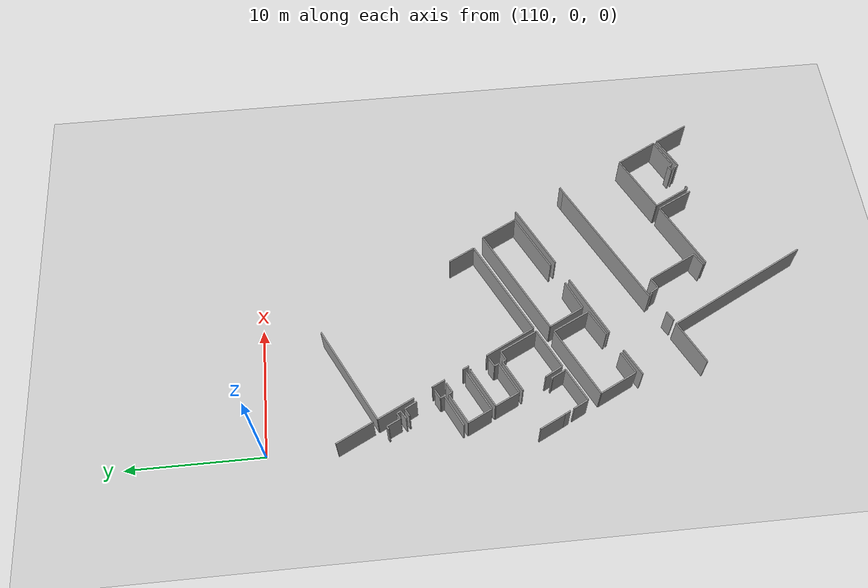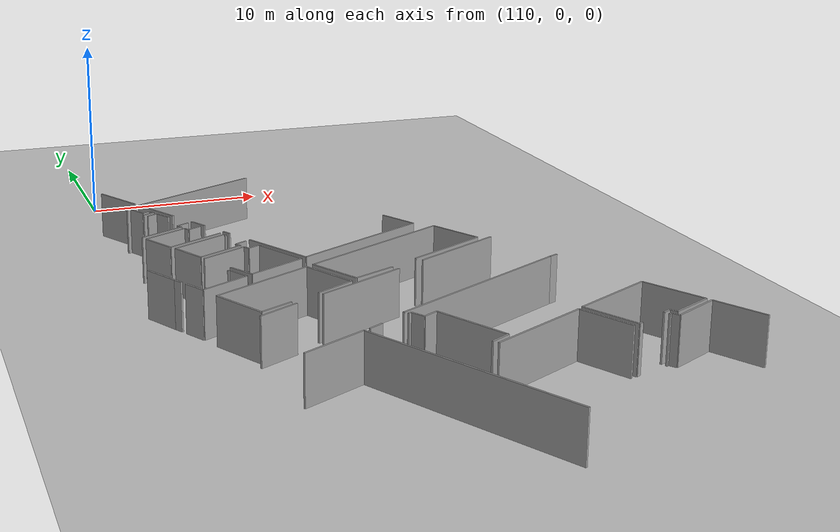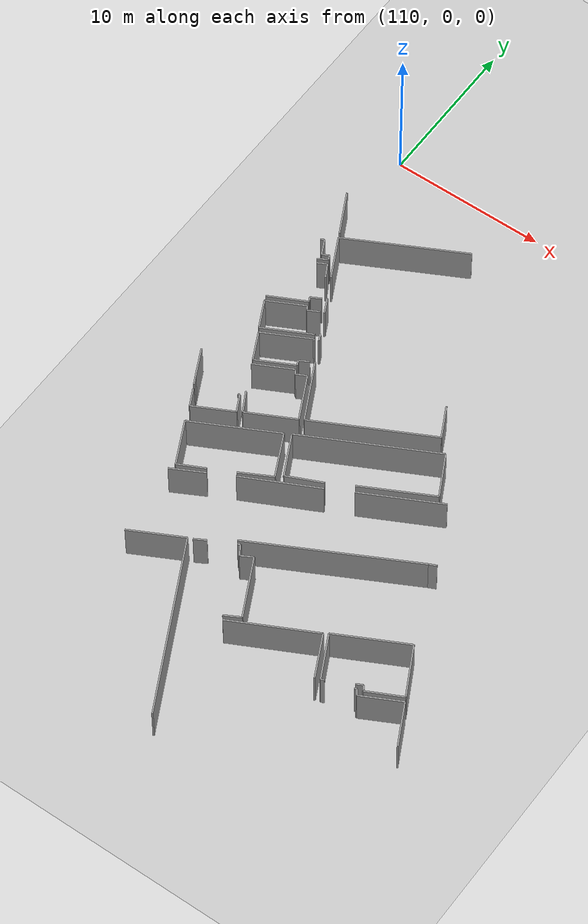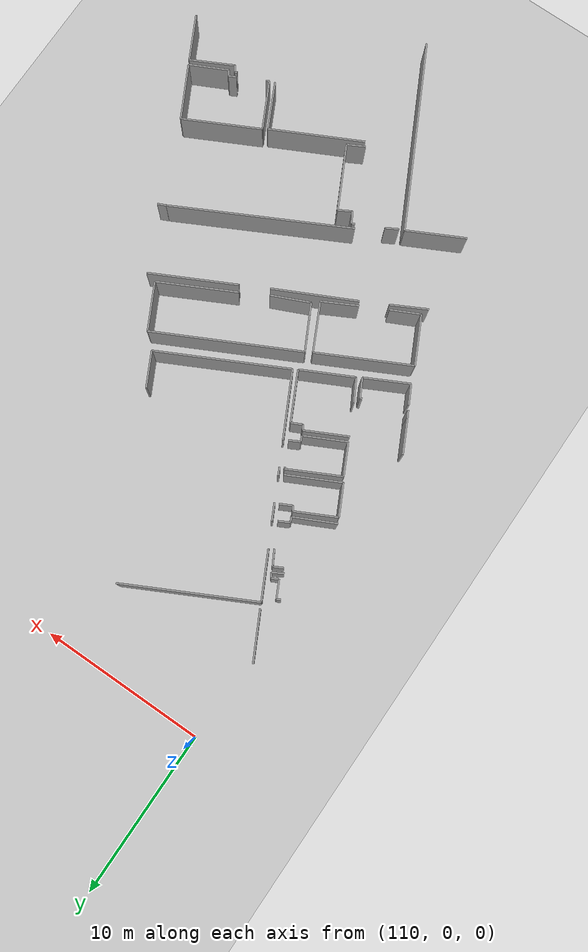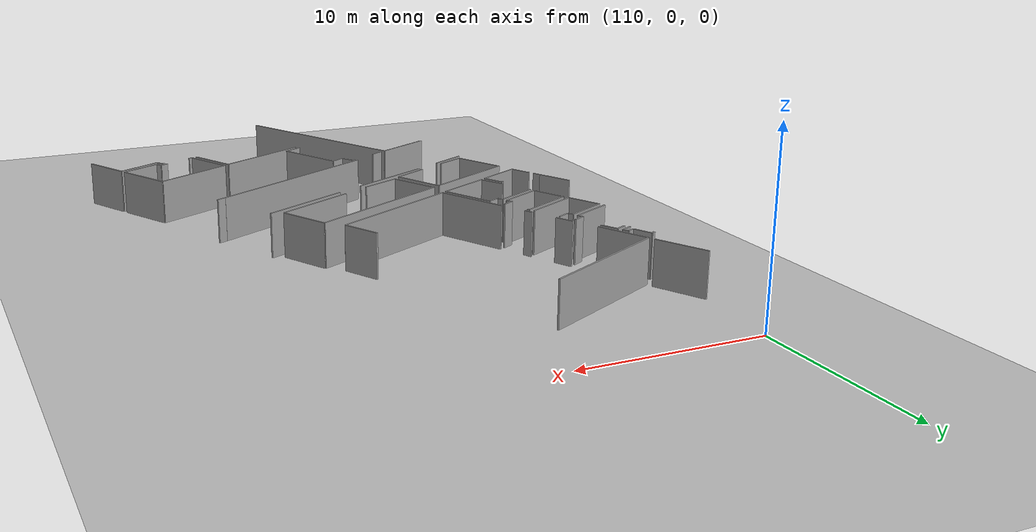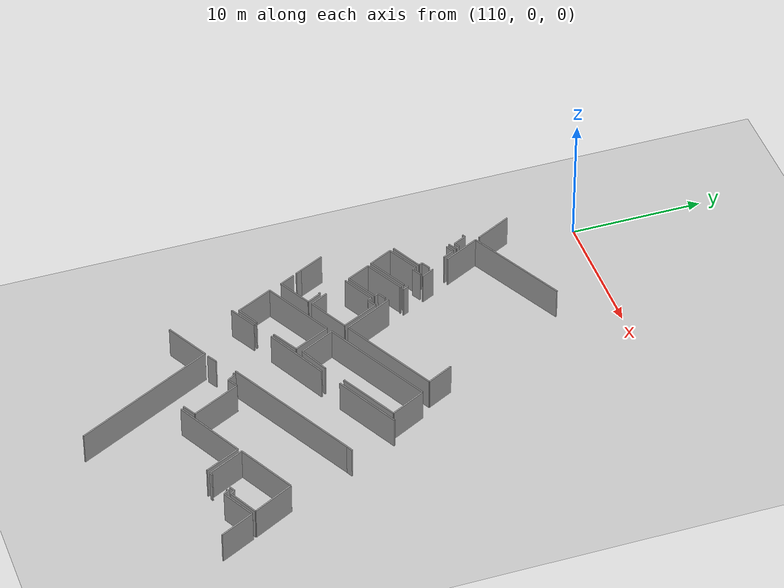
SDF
<sdf version="1.6">
 <world name="default">
  <model name="ground_plane">
   <static>1</static>
   <link name="link">
    <collision name="collision">
     <geometry><plane><normal>0 0 1</normal><size>100 100</size></plane></geometry>
     <surface><friction><ode><mu>100</mu><mu2>50</mu2></ode></friction></surface>
    </collision>
    <visual name="visual">
     <cast_shadows>0</cast_shadows>
     <geometry><plane><normal>0 0 1</normal><size>100 100</size></plane></geometry>
     <material>
      <script><uri>file://media/materials/scripts/gazebo.material</uri><name>Gazebo/Grey</name></script>
     </material>
    </visual>
   </link>
  </model>
  <model name="0510045925_40">
   <static>1</static>
   <link name="Wall_116">
    <collision name="Wall_116_Collision">
     <geometry><box><size>3.62508216395 0.1 2.5</size></box></geometry>
     <pose>1.81254108197 0 1.25 0 0 0</pose>
    </collision>
    <visual name="Wall_116_Visual">
     <pose>1.81254108197 0 1.25 0 0 0</pose>
     <geometry><box><size>3.62508216395 0.1 2.5</size></box></geometry>
     <material>
      <script><uri>file://media/materials/scripts/gazebo.material</uri><name>Gazebo/Grey</name></script>
      <ambient>1 1 1 1</ambient>
     </material>
    </visual>
    <pose>247.142509073 -133.036648816 0 0 0 0.472226789187</pose>
   </link>
   <link name="Wall_117">
    <collision name="Wall_117_Collision">
     <geometry><box><size>11.6427029881 0.1 2.5</size></box></geometry>
     <pose>5.82135149405 0 1.25 0 0 0</pose>
    </collision>
    <visual name="Wall_117_Visual">
     <pose>5.82135149405 0 1.25 0 0 0</pose>
     <geometry><box><size>11.6427029881 0.1 2.5</size></box></geometry>
     <material>
      <script><uri>file://media/materials/scripts/gazebo.material</uri><name>Gazebo/Grey</name></script>
      <ambient>1 1 1 1</ambient>
     </material>
    </visual>
    <pose>250.370853532 -131.387705896 0 0 0 -1.09823813976</pose>
   </link>
   <link name="Wall_126">
    <collision name="Wall_126_Collision">
     <geometry><box><size>5.719314957 0.1 2.5</size></box></geometry>
     <pose>2.8596574785 0 1.25 0 0 0</pose>
    </collision>
    <visual name="Wall_126_Visual">
     <pose>2.8596574785 0 1.25 0 0 0</pose>
     <geometry><box><size>5.719314957 0.1 2.5</size></box></geometry>
     <material>
      <script><uri>file://media/materials/scripts/gazebo.material</uri><name>Gazebo/Grey</name></script>
      <ambient>1 1 1 1</ambient>
     </material>
    </visual>
    <pose>255.246364305 -134.593462095 0 0 0 0.46519556466</pose>
   </link>
   <link name="Wall_127">
    <collision name="Wall_127_Collision">
     <geometry><box><size>2.93678784557 0.1 2.5</size></box></geometry>
     <pose>1.46839392278 0 1.25 0 0 0</pose>
    </collision>
    <visual name="Wall_127_Visual">
     <pose>1.46839392278 0 1.25 0 0 0</pose>
     <geometry><box><size>2.93678784557 0.1 2.5</size></box></geometry>
     <material>
      <script><uri>file://media/materials/scripts/gazebo.material</uri><name>Gazebo/Grey</name></script>
      <ambient>1 1 1 1</ambient>
     </material>
    </visual>
    <pose>260.357909698 -132.027791173 0 0 0 -1.10954494108</pose>
   </link>
   <link name="Wall_132">
    <collision name="Wall_132_Collision">
     <geometry><box><size>0.154443700212 0.1 2.5</size></box></geometry>
     <pose>0.0772218501061 0 1.25 0 0 0</pose>
    </collision>
    <visual name="Wall_132_Visual">
     <pose>0.0772218501061 0 1.25 0 0 0</pose>
     <geometry><box><size>0.154443700212 0.1 2.5</size></box></geometry>
     <material>
      <script><uri>file://media/materials/scripts/gazebo.material</uri><name>Gazebo/Grey</name></script>
      <ambient>1 1 1 1</ambient>
     </material>
    </visual>
    <pose>263.847668841 -133.911245907 0 0 0 0.513642704664</pose>
   </link>
   <link name="Wall_133">
    <collision name="Wall_133_Collision">
     <geometry><box><size>0.429248586005 0.1 2.5</size></box></geometry>
     <pose>0.214624293003 0 1.25 0 0 0</pose>
    </collision>
    <visual name="Wall_133_Visual">
     <pose>0.214624293003 0 1.25 0 0 0</pose>
     <geometry><box><size>0.429248586005 0.1 2.5</size></box></geometry>
     <material>
      <script><uri>file://media/materials/scripts/gazebo.material</uri><name>Gazebo/Grey</name></script>
      <ambient>1 1 1 1</ambient>
     </material>
    </visual>
    <pose>263.982183193 -133.835359509 0 0 0 -0.981481818457</pose>
   </link>
   <link name="Wall_134">
    <collision name="Wall_134_Collision">
     <geometry><box><size>2.71397418761 0.1 2.5</size></box></geometry>
     <pose>1.3569870938 0 1.25 0 0 0</pose>
    </collision>
    <visual name="Wall_134_Visual">
     <pose>1.3569870938 0 1.25 0 0 0</pose>
     <geometry><box><size>2.71397418761 0.1 2.5</size></box></geometry>
     <material>
      <script><uri>file://media/materials/scripts/gazebo.material</uri><name>Gazebo/Grey</name></script>
      <ambient>1 1 1 1</ambient>
     </material>
    </visual>
    <pose>264.220755818 -134.192203244 0 0 0 0.47284852041</pose>
   </link>
   <link name="Wall_135">
    <collision name="Wall_135_Collision">
     <geometry><box><size>2.8467577352 0.1 2.5</size></box></geometry>
     <pose>1.4233788676 0 1.25 0 0 0</pose>
    </collision>
    <visual name="Wall_135_Visual">
     <pose>1.4233788676 0 1.25 0 0 0</pose>
     <geometry><box><size>2.8467577352 0.1 2.5</size></box></geometry>
     <material>
      <script><uri>file://media/materials/scripts/gazebo.material</uri><name>Gazebo/Grey</name></script>
      <ambient>1 1 1 1</ambient>
     </material>
    </visual>
    <pose>266.636938149 -132.956194005 0 0 0 -1.09877570773</pose>
   </link>
   <link name="Wall_137">
    <collision name="Wall_137_Collision">
     <geometry><box><size>4.82132711584 0.1 2.5</size></box></geometry>
     <pose>2.41066355792 0 1.25 0 0 0</pose>
    </collision>
    <visual name="Wall_137_Visual">
     <pose>2.41066355792 0 1.25 0 0 0</pose>
     <geometry><box><size>4.82132711584 0.1 2.5</size></box></geometry>
     <material>
      <script><uri>file://media/materials/scripts/gazebo.material</uri><name>Gazebo/Grey</name></script>
      <ambient>1 1 1 1</ambient>
     </material>
    </visual>
    <pose>260.624400396 -131.836679272 0 0 0 0.468450171131</pose>
   </link>
   <link name="Wall_138">
    <collision name="Wall_138_Collision">
     <geometry><box><size>3.41353898138 0.1 2.5</size></box></geometry>
     <pose>1.70676949069 0 1.25 0 0 0</pose>
    </collision>
    <visual name="Wall_138_Visual">
     <pose>1.70676949069 0 1.25 0 0 0</pose>
     <geometry><box><size>3.41353898138 0.1 2.5</size></box></geometry>
     <material>
      <script><uri>file://media/materials/scripts/gazebo.material</uri><name>Gazebo/Grey</name></script>
      <ambient>1 1 1 1</ambient>
     </material>
    </visual>
    <pose>264.926321667 -129.659830969 0 0 0 -1.0900236877</pose>
   </link>
   <link name="Wall_139">
    <collision name="Wall_139_Collision">
     <geometry><box><size>2.39699355758 0.1 2.5</size></box></geometry>
     <pose>1.19849677879 0 1.25 0 0 0</pose>
    </collision>
    <visual name="Wall_139_Visual">
     <pose>1.19849677879 0 1.25 0 0 0</pose>
     <geometry><box><size>2.39699355758 0.1 2.5</size></box></geometry>
     <material>
      <script><uri>file://media/materials/scripts/gazebo.material</uri><name>Gazebo/Grey</name></script>
      <ambient>1 1 1 1</ambient>
     </material>
    </visual>
    <pose>266.504961803 -132.686403898 0 0 0 -2.68334323062</pose>
   </link>
   <link name="Wall_140">
    <collision name="Wall_140_Collision">
     <geometry><box><size>0.376455434801 0.1 2.5</size></box></geometry>
     <pose>0.188227717401 0 1.25 0 0 0</pose>
    </collision>
    <visual name="Wall_140_Visual">
     <pose>0.188227717401 0 1.25 0 0 0</pose>
     <geometry><box><size>0.376455434801 0.1 2.5</size></box></geometry>
     <material>
      <script><uri>file://media/materials/scripts/gazebo.material</uri><name>Gazebo/Grey</name></script>
      <ambient>1 1 1 1</ambient>
     </material>
    </visual>
    <pose>264.355270171 -133.746783077 0 0 0 2.15655510464</pose>
   </link>
   <link name="Wall_141">
    <collision name="Wall_141_Collision">
     <geometry><box><size>0.469347703283 0.1 2.5</size></box></geometry>
     <pose>0.234673851641 0 1.25 0 0 0</pose>
    </collision>
    <visual name="Wall_141_Visual">
     <pose>0.234673851641 0 1.25 0 0 0</pose>
     <geometry><box><size>0.469347703283 0.1 2.5</size></box></geometry>
     <material>
      <script><uri>file://media/materials/scripts/gazebo.material</uri><name>Gazebo/Grey</name></script>
      <ambient>1 1 1 1</ambient>
     </material>
    </visual>
    <pose>264.147153626 -133.433085455 0 0 0 -2.68520005635</pose>
   </link>
   <link name="Wall_142">
    <collision name="Wall_142_Collision">
     <geometry><box><size>0.223704806979 0.1 2.5</size></box></geometry>
     <pose>0.111852403489 0 1.25 0 0 0</pose>
    </collision>
    <visual name="Wall_142_Visual">
     <pose>0.111852403489 0 1.25 0 0 0</pose>
     <geometry><box><size>0.223704806979 0.1 2.5</size></box></geometry>
     <material>
      <script><uri>file://media/materials/scripts/gazebo.material</uri><name>Gazebo/Grey</name></script>
      <ambient>1 1 1 1</ambient>
     </material>
    </visual>
    <pose>262.185274485 -134.433821477 0 0 0 -2.70839248516</pose>
   </link>
   <link name="Wall_143">
    <collision name="Wall_143_Collision">
     <geometry><box><size>3.01420864127 0.1 2.5</size></box></geometry>
     <pose>1.50710432064 0 1.25 0 0 0</pose>
    </collision>
    <visual name="Wall_143_Visual">
     <pose>1.50710432064 0 1.25 0 0 0</pose>
     <geometry><box><size>3.01420864127 0.1 2.5</size></box></geometry>
     <material>
      <script><uri>file://media/materials/scripts/gazebo.material</uri><name>Gazebo/Grey</name></script>
      <ambient>1 1 1 1</ambient>
     </material>
    </visual>
    <pose>261.982233953 -134.527727723 0 0 0 2.03809657808</pose>
   </link>
   <link name="Wall_145">
    <collision name="Wall_145_Collision">
     <geometry><box><size>0.825821656549 0.1 2.5</size></box></geometry>
     <pose>0.412910828274 0 1.25 0 0 0</pose>
    </collision>
    <visual name="Wall_145_Visual">
     <pose>0.412910828274 0 1.25 0 0 0</pose>
     <geometry><box><size>0.825821656549 0.1 2.5</size></box></geometry>
     <material>
      <script><uri>file://media/materials/scripts/gazebo.material</uri><name>Gazebo/Grey</name></script>
      <ambient>1 1 1 1</ambient>
     </material>
    </visual>
    <pose>250.672876323 -131.267404381 0 0 0 0.509844766145</pose>
   </link>
   <link name="Wall_146">
    <collision name="Wall_146_Collision">
     <geometry><box><size>0.187243837946 0.1 2.5</size></box></geometry>
     <pose>0.0936219189729 0 1.25 0 0 0</pose>
    </collision>
    <visual name="Wall_146_Visual">
     <pose>0.0936219189729 0 1.25 0 0 0</pose>
     <geometry><box><size>0.187243837946 0.1 2.5</size></box></geometry>
     <material>
      <script><uri>file://media/materials/scripts/gazebo.material</uri><name>Gazebo/Grey</name></script>
      <ambient>1 1 1 1</ambient>
     </material>
    </visual>
    <pose>252.939316261 -130.07631786 0 0 0 0.520659226743</pose>
   </link>
   <link name="Wall_147">
    <collision name="Wall_147_Collision">
     <geometry><box><size>0.756490508271 0.1 2.5</size></box></geometry>
     <pose>0.378245254136 0 1.25 0 0 0</pose>
    </collision>
    <visual name="Wall_147_Visual">
     <pose>0.378245254136 0 1.25 0 0 0</pose>
     <geometry><box><size>0.756490508271 0.1 2.5</size></box></geometry>
     <material>
      <script><uri>file://media/materials/scripts/gazebo.material</uri><name>Gazebo/Grey</name></script>
      <ambient>1 1 1 1</ambient>
     </material>
    </visual>
    <pose>253.101748687 -129.983173016 0 0 0 -1.03175772323</pose>
   </link>
   <link name="Wall_148">
    <collision name="Wall_148_Collision">
     <geometry><box><size>0.846406039675 0.1 2.5</size></box></geometry>
     <pose>0.423203019838 0 1.25 0 0 0</pose>
    </collision>
    <visual name="Wall_148_Visual">
     <pose>0.423203019838 0 1.25 0 0 0</pose>
     <geometry><box><size>0.846406039675 0.1 2.5</size></box></geometry>
     <material>
      <script><uri>file://media/materials/scripts/gazebo.material</uri><name>Gazebo/Grey</name></script>
      <ambient>1 1 1 1</ambient>
     </material>
    </visual>
    <pose>253.490063704 -130.632395117 0 0 0 0.5041569081</pose>
   </link>
   <link name="Wall_149">
    <collision name="Wall_149_Collision">
     <geometry><box><size>4.03141661853 0.1 2.5</size></box></geometry>
     <pose>2.01570830927 0 1.25 0 0 0</pose>
    </collision>
    <visual name="Wall_149_Visual">
     <pose>2.01570830927 0 1.25 0 0 0</pose>
     <geometry><box><size>4.03141661853 0.1 2.5</size></box></geometry>
     <material>
      <script><uri>file://media/materials/scripts/gazebo.material</uri><name>Gazebo/Grey</name></script>
      <ambient>1 1 1 1</ambient>
     </material>
    </visual>
    <pose>254.231161646 -130.223522246 0 0 0 -1.1045866422</pose>
   </link>
   <link name="Wall_150">
    <collision name="Wall_150_Collision">
     <geometry><box><size>1.12831326719 0.1 2.5</size></box></geometry>
     <pose>0.564156633594 0 1.25 0 0 0</pose>
    </collision>
    <visual name="Wall_150_Visual">
     <pose>0.564156633594 0 1.25 0 0 0</pose>
     <geometry><box><size>1.12831326719 0.1 2.5</size></box></geometry>
     <material>
      <script><uri>file://media/materials/scripts/gazebo.material</uri><name>Gazebo/Grey</name></script>
      <ambient>1 1 1 1</ambient>
     </material>
    </visual>
    <pose>256.043298393 -133.824699881 0 0 0 -2.64091748231</pose>
   </link>
   <link name="Wall_152">
    <collision name="Wall_152_Collision">
     <geometry><box><size>3.0282633978 0.1 2.5</size></box></geometry>
     <pose>1.5141316989 0 1.25 0 0 0</pose>
    </collision>
    <visual name="Wall_152_Visual">
     <pose>1.5141316989 0 1.25 0 0 0</pose>
     <geometry><box><size>3.0282633978 0.1 2.5</size></box></geometry>
     <material>
      <script><uri>file://media/materials/scripts/gazebo.material</uri><name>Gazebo/Grey</name></script>
      <ambient>1 1 1 1</ambient>
     </material>
    </visual>
    <pose>246.830334255 -127.76698561 0 0 0 2.03388171696</pose>
   </link>
   <link name="Wall_153">
    <collision name="Wall_153_Collision">
     <geometry><box><size>5.80992351053 0.1 2.5</size></box></geometry>
     <pose>2.90496175526 0 1.25 0 0 0</pose>
    </collision>
    <visual name="Wall_153_Visual">
     <pose>2.90496175526 0 1.25 0 0 0</pose>
     <geometry><box><size>5.80992351053 0.1 2.5</size></box></geometry>
     <material>
      <script><uri>file://media/materials/scripts/gazebo.material</uri><name>Gazebo/Grey</name></script>
      <ambient>1 1 1 1</ambient>
     </material>
    </visual>
    <pose>245.477576711 -125.057663511 0 0 0 0.470915093289</pose>
   </link>
   <link name="Wall_154">
    <collision name="Wall_154_Collision">
     <geometry><box><size>3.02923167791 0.1 2.5</size></box></geometry>
     <pose>1.51461583895 0 1.25 0 0 0</pose>
    </collision>
    <visual name="Wall_154_Visual">
     <pose>1.51461583895 0 1.25 0 0 0</pose>
     <geometry><box><size>3.02923167791 0.1 2.5</size></box></geometry>
     <material>
      <script><uri>file://media/materials/scripts/gazebo.material</uri><name>Gazebo/Grey</name></script>
      <ambient>1 1 1 1</ambient>
     </material>
    </visual>
    <pose>250.655110276 -122.421689805 0 0 0 -1.11348106721</pose>
   </link>
   <link name="Wall_155">
    <collision name="Wall_155_Collision">
     <geometry><box><size>2.22370619838 0.1 2.5</size></box></geometry>
     <pose>1.11185309919 0 1.25 0 0 0</pose>
    </collision>
    <visual name="Wall_155_Visual">
     <pose>1.11185309919 0 1.25 0 0 0</pose>
     <geometry><box><size>2.22370619838 0.1 2.5</size></box></geometry>
     <material>
      <script><uri>file://media/materials/scripts/gazebo.material</uri><name>Gazebo/Grey</name></script>
      <ambient>1 1 1 1</ambient>
     </material>
    </visual>
    <pose>251.992639781 -125.139641126 0 0 0 -2.65630141408</pose>
   </link>
   <link name="Wall_156">
    <collision name="Wall_156_Collision">
     <geometry><box><size>1.83438126078 0.1 2.5</size></box></geometry>
     <pose>0.917190630389 0 1.25 0 0 0</pose>
    </collision>
    <visual name="Wall_156_Visual">
     <pose>0.917190630389 0 1.25 0 0 0</pose>
     <geometry><box><size>1.83438126078 0.1 2.5</size></box></geometry>
     <material>
      <script><uri>file://media/materials/scripts/gazebo.material</uri><name>Gazebo/Grey</name></script>
      <ambient>1 1 1 1</ambient>
     </material>
    </visual>
    <pose>248.477500571 -126.959645694 0 0 0 -2.68586518094</pose>
   </link>
   <link name="Wall_157">
    <collision name="Wall_157_Collision">
     <geometry><box><size>2.91217068662 0.1 2.5</size></box></geometry>
     <pose>1.45608534331 0 1.25 0 0 0</pose>
    </collision>
    <visual name="Wall_157_Visual">
     <pose>1.45608534331 0 1.25 0 0 0</pose>
     <geometry><box><size>2.91217068662 0.1 2.5</size></box></geometry>
     <material>
      <script><uri>file://media/materials/scripts/gazebo.material</uri><name>Gazebo/Grey</name></script>
      <ambient>1 1 1 1</ambient>
     </material>
    </visual>
    <pose>252.380954798 -124.782797391 0 0 0 2.04407101598</pose>
   </link>
   <link name="Wall_158">
    <collision name="Wall_158_Collision">
     <geometry><box><size>9.00134218647 0.1 2.5</size></box></geometry>
     <pose>4.50067109323 0 1.25 0 0 0</pose>
    </collision>
    <visual name="Wall_158_Visual">
     <pose>4.50067109323 0 1.25 0 0 0</pose>
     <geometry><box><size>9.00134218647 0.1 2.5</size></box></geometry>
     <material>
      <script><uri>file://media/materials/scripts/gazebo.material</uri><name>Gazebo/Grey</name></script>
      <ambient>1 1 1 1</ambient>
     </material>
    </visual>
    <pose>251.05357732 -122.1907312 0 0 0 0.468161852522</pose>
   </link>
   <link name="Wall_159">
    <collision name="Wall_159_Collision">
     <geometry><box><size>2.94026395505 0.1 2.5</size></box></geometry>
     <pose>1.47013197753 0 1.25 0 0 0</pose>
    </collision>
    <visual name="Wall_159_Visual">
     <pose>1.47013197753 0 1.25 0 0 0</pose>
     <geometry><box><size>2.94026395505 0.1 2.5</size></box></geometry>
     <material>
      <script><uri>file://media/materials/scripts/gazebo.material</uri><name>Gazebo/Grey</name></script>
      <ambient>1 1 1 1</ambient>
     </material>
    </visual>
    <pose>259.086368366 -118.128905358 0 0 0 -1.09271068166</pose>
   </link>
   <link name="Wall_160">
    <collision name="Wall_160_Collision">
     <geometry><box><size>4.84379267904 0.1 2.5</size></box></geometry>
     <pose>2.42189633952 0 1.25 0 0 0</pose>
    </collision>
    <visual name="Wall_160_Visual">
     <pose>2.42189633952 0 1.25 0 0 0</pose>
     <geometry><box><size>4.84379267904 0.1 2.5</size></box></geometry>
     <material>
      <script><uri>file://media/materials/scripts/gazebo.material</uri><name>Gazebo/Grey</name></script>
      <ambient>1 1 1 1</ambient>
     </material>
    </visual>
    <pose>260.439125911 -120.739498997 0 0 0 -2.66979037697</pose>
   </link>
   <link name="Wall_161">
    <collision name="Wall_161_Collision">
     <geometry><box><size>2.39802764192 0.1 2.5</size></box></geometry>
     <pose>1.19901382096 0 1.25 0 0 0</pose>
    </collision>
    <visual name="Wall_161_Visual">
     <pose>1.19901382096 0 1.25 0 0 0</pose>
     <geometry><box><size>2.39802764192 0.1 2.5</size></box></geometry>
     <material>
      <script><uri>file://media/materials/scripts/gazebo.material</uri><name>Gazebo/Grey</name></script>
      <ambient>1 1 1 1</ambient>
     </material>
    </visual>
    <pose>254.56871653 -123.800842618 0 0 0 -2.7197038803</pose>
   </link>
   <link name="Wall_180">
    <collision name="Wall_180_Collision">
     <geometry><box><size>2.27879120139 0.1 2.5</size></box></geometry>
     <pose>1.1393956007 0 1.25 0 0 0</pose>
    </collision>
    <visual name="Wall_180_Visual">
     <pose>1.1393956007 0 1.25 0 0 0</pose>
     <geometry><box><size>2.27879120139 0.1 2.5</size></box></geometry>
     <material>
      <script><uri>file://media/materials/scripts/gazebo.material</uri><name>Gazebo/Grey</name></script>
      <ambient>1 1 1 1</ambient>
     </material>
    </visual>
    <pose>246.634907743 -128.256059491 0 0 0 0.483373043088</pose>
   </link>
   <link name="Wall_181">
    <collision name="Wall_181_Collision">
     <geometry><box><size>5.14508912748 0.1 2.5</size></box></geometry>
     <pose>2.57254456374 0 1.25 0 0 0</pose>
    </collision>
    <visual name="Wall_181_Visual">
     <pose>2.57254456374 0 1.25 0 0 0</pose>
     <geometry><box><size>5.14508912748 0.1 2.5</size></box></geometry>
     <material>
      <script><uri>file://media/materials/scripts/gazebo.material</uri><name>Gazebo/Grey</name></script>
      <ambient>1 1 1 1</ambient>
     </material>
    </visual>
    <pose>250.16019898 -126.409913454 0 0 0 0.457205905873</pose>
   </link>
   <link name="Wall_182">
    <collision name="Wall_182_Collision">
     <geometry><box><size>5.35197619454 0.1 2.5</size></box></geometry>
     <pose>2.67598809727 0 1.25 0 0 0</pose>
    </collision>
    <visual name="Wall_182_Visual">
     <pose>2.67598809727 0 1.25 0 0 0</pose>
     <geometry><box><size>5.35197619454 0.1 2.5</size></box></geometry>
     <material>
      <script><uri>file://media/materials/scripts/gazebo.material</uri><name>Gazebo/Grey</name></script>
      <ambient>1 1 1 1</ambient>
     </material>
    </visual>
    <pose>256.355473211 -123.312276338 0 0 0 0.469034390965</pose>
   </link>
   <link name="Wall_183">
    <collision name="Wall_183_Collision">
     <geometry><box><size>0.515591600117 0.1 2.5</size></box></geometry>
     <pose>0.257795800059 0 1.25 0 0 0</pose>
    </collision>
    <visual name="Wall_183_Visual">
     <pose>0.257795800059 0 1.25 0 0 0</pose>
     <geometry><box><size>0.515591600117 0.1 2.5</size></box></geometry>
     <material>
      <script><uri>file://media/materials/scripts/gazebo.material</uri><name>Gazebo/Grey</name></script>
      <ambient>1 1 1 1</ambient>
     </material>
    </visual>
    <pose>263.017740666 -124.615035151 0 0 0 -2.70392466387</pose>
   </link>
   <link name="Wall_184">
    <collision name="Wall_184_Collision">
     <geometry><box><size>10.9794329733 0.1 2.5</size></box></geometry>
     <pose>5.48971648664 0 1.25 0 0 0</pose>
    </collision>
    <visual name="Wall_184_Visual">
     <pose>5.48971648664 0 1.25 0 0 0</pose>
     <geometry><box><size>10.9794329733 0.1 2.5</size></box></geometry>
     <material>
      <script><uri>file://media/materials/scripts/gazebo.material</uri><name>Gazebo/Grey</name></script>
      <ambient>1 1 1 1</ambient>
     </material>
    </visual>
    <pose>262.550747443 -124.833557524 0 0 0 -2.6655393745</pose>
   </link>
   <link name="Wall_257">
    <collision name="Wall_257_Collision">
     <geometry><box><size>3.00596214658 0.1 2.5</size></box></geometry>
     <pose>1.50298107329 0 1.25 0 0 0</pose>
    </collision>
    <visual name="Wall_257_Visual">
     <pose>1.50298107329 0 1.25 0 0 0</pose>
     <geometry><box><size>3.00596214658 0.1 2.5</size></box></geometry>
     <material>
      <script><uri>file://media/materials/scripts/gazebo.material</uri><name>Gazebo/Grey</name></script>
      <ambient>1 1 1 1</ambient>
     </material>
    </visual>
    <pose>244.936981295 -108.884469937 0 0 0 2.04516779023</pose>
   </link>
   <link name="Wall_273">
    <collision name="Wall_273_Collision">
     <geometry><box><size>0.252183881044 0.1 2.5</size></box></geometry>
     <pose>0.126091940522 0 1.25 0 0 0</pose>
    </collision>
    <visual name="Wall_273_Visual">
     <pose>0.126091940522 0 1.25 0 0 0</pose>
     <geometry><box><size>0.252183881044 0.1 2.5</size></box></geometry>
     <material>
      <script><uri>file://media/materials/scripts/gazebo.material</uri><name>Gazebo/Grey</name></script>
      <ambient>1 1 1 1</ambient>
     </material>
    </visual>
    <pose>244.277099566 -109.935712292 0 0 0 0.504165961479</pose>
   </link>
   <link name="Wall_274">
    <collision name="Wall_274_Collision">
     <geometry><box><size>1.09644237243 0.1 2.5</size></box></geometry>
     <pose>0.548221186214 0 1.25 0 0 0</pose>
    </collision>
    <visual name="Wall_274_Visual">
     <pose>0.548221186214 0 1.25 0 0 0</pose>
     <geometry><box><size>1.09644237243 0.1 2.5</size></box></geometry>
     <material>
      <script><uri>file://media/materials/scripts/gazebo.material</uri><name>Gazebo/Grey</name></script>
      <ambient>1 1 1 1</ambient>
     </material>
    </visual>
    <pose>244.497906145 -109.813887972 0 0 0 -1.10507832738</pose>
   </link>
   <link name="Wall_275">
    <collision name="Wall_275_Collision">
     <geometry><box><size>0.456623228855 0.1 2.5</size></box></geometry>
     <pose>0.228311614427 0 1.25 0 0 0</pose>
    </collision>
    <visual name="Wall_275_Visual">
     <pose>0.228311614427 0 1.25 0 0 0</pose>
     <geometry><box><size>0.456623228855 0.1 2.5</size></box></geometry>
     <material>
      <script><uri>file://media/materials/scripts/gazebo.material</uri><name>Gazebo/Grey</name></script>
      <ambient>1 1 1 1</ambient>
     </material>
    </visual>
    <pose>244.990279435 -110.793558539 0 0 0 0.462653326455</pose>
   </link>
   <link name="Wall_276">
    <collision name="Wall_276_Collision">
     <geometry><box><size>0.307320642742 0.1 2.5</size></box></geometry>
     <pose>0.153660321371 0 1.25 0 0 0</pose>
    </collision>
    <visual name="Wall_276_Visual">
     <pose>0.153660321371 0 1.25 0 0 0</pose>
     <geometry><box><size>0.307320642742 0.1 2.5</size></box></geometry>
     <material>
      <script><uri>file://media/materials/scripts/gazebo.material</uri><name>Gazebo/Grey</name></script>
      <ambient>1 1 1 1</ambient>
     </material>
    </visual>
    <pose>245.398898505 -110.589756605 0 0 0 -1.0428407703</pose>
   </link>
   <link name="Wall_277">
    <collision name="Wall_277_Collision">
     <geometry><box><size>0.714445085122 0.1 2.5</size></box></geometry>
     <pose>0.357222542561 0 1.25 0 0 0</pose>
    </collision>
    <visual name="Wall_277_Visual">
     <pose>0.357222542561 0 1.25 0 0 0</pose>
     <geometry><box><size>0.714445085122 0.1 2.5</size></box></geometry>
     <material>
      <script><uri>file://media/materials/scripts/gazebo.material</uri><name>Gazebo/Grey</name></script>
      <ambient>1 1 1 1</ambient>
     </material>
    </visual>
    <pose>245.553716911 -110.855232101 0 0 0 -2.61244422905</pose>
   </link>
   <link name="Wall_282">
    <collision name="Wall_282_Collision">
     <geometry><box><size>0.638480204442 0.1 2.5</size></box></geometry>
     <pose>0.319240102221 0 1.25 0 0 0</pose>
    </collision>
    <visual name="Wall_282_Visual">
     <pose>0.319240102221 0 1.25 0 0 0</pose>
     <geometry><box><size>0.638480204442 0.1 2.5</size></box></geometry>
     <material>
      <script><uri>file://media/materials/scripts/gazebo.material</uri><name>Gazebo/Grey</name></script>
      <ambient>1 1 1 1</ambient>
     </material>
    </visual>
    <pose>245.11464176 -111.453186467 0 0 0 0.47253626379</pose>
   </link>
   <link name="Wall_283">
    <collision name="Wall_283_Collision">
     <geometry><box><size>0.97404661297 0.1 2.5</size></box></geometry>
     <pose>0.487023306485 0 1.25 0 0 0</pose>
    </collision>
    <visual name="Wall_283_Visual">
     <pose>0.487023306485 0 1.25 0 0 0</pose>
     <geometry><box><size>0.97404661297 0.1 2.5</size></box></geometry>
     <material>
      <script><uri>file://media/materials/scripts/gazebo.material</uri><name>Gazebo/Grey</name></script>
      <ambient>1 1 1 1</ambient>
     </material>
    </visual>
    <pose>245.68315525 -111.162584706 0 0 0 -1.07078415853</pose>
   </link>
   <link name="Wall_284">
    <collision name="Wall_284_Collision">
     <geometry><box><size>0.718109012189 0.1 2.5</size></box></geometry>
     <pose>0.359054506095 0 1.25 0 0 0</pose>
    </collision>
    <visual name="Wall_284_Visual">
     <pose>0.359054506095 0 1.25 0 0 0</pose>
     <geometry><box><size>0.718109012189 0.1 2.5</size></box></geometry>
     <material>
      <script><uri>file://media/materials/scripts/gazebo.material</uri><name>Gazebo/Grey</name></script>
      <ambient>1 1 1 1</ambient>
     </material>
    </visual>
    <pose>246.876018375 -113.391208345 0 0 0 -2.65423407408</pose>
   </link>
   <link name="Wall_285">
    <collision name="Wall_285_Collision">
     <geometry><box><size>0.319626041697 0.1 2.5</size></box></geometry>
     <pose>0.159813020849 0 1.25 0 0 0</pose>
    </collision>
    <visual name="Wall_285_Visual">
     <pose>0.159813020849 0 1.25 0 0 0</pose>
     <geometry><box><size>0.319626041697 0.1 2.5</size></box></geometry>
     <material>
      <script><uri>file://media/materials/scripts/gazebo.material</uri><name>Gazebo/Grey</name></script>
      <ambient>1 1 1 1</ambient>
     </material>
    </visual>
    <pose>246.241516713 -113.727494226 0 0 0 -1.10998961924</pose>
   </link>
   <link name="Wall_286">
    <collision name="Wall_286_Collision">
     <geometry><box><size>2.60742115306 0.1 2.5</size></box></geometry>
     <pose>1.30371057653 0 1.25 0 0 0</pose>
    </collision>
    <visual name="Wall_286_Visual">
     <pose>1.30371057653 0 1.25 0 0 0</pose>
     <geometry><box><size>2.60742115306 0.1 2.5</size></box></geometry>
     <material>
      <script><uri>file://media/materials/scripts/gazebo.material</uri><name>Gazebo/Grey</name></script>
      <ambient>1 1 1 1</ambient>
     </material>
    </visual>
    <pose>246.383645085 -114.013781376 0 0 0 -2.68255932492</pose>
   </link>
   <link name="Wall_287">
    <collision name="Wall_287_Collision">
     <geometry><box><size>1.96587456635 0.1 2.5</size></box></geometry>
     <pose>0.982937283176 0 1.25 0 0 0</pose>
    </collision>
    <visual name="Wall_287_Visual">
     <pose>0.982937283176 0 1.25 0 0 0</pose>
     <geometry><box><size>1.96587456635 0.1 2.5</size></box></geometry>
     <material>
      <script><uri>file://media/materials/scripts/gazebo.material</uri><name>Gazebo/Grey</name></script>
      <ambient>1 1 1 1</ambient>
     </material>
    </visual>
    <pose>245.079109667 -117.235527017 0 0 0 2.03530998639</pose>
   </link>
   <link name="Wall_288">
    <collision name="Wall_288_Collision">
     <geometry><box><size>2.57396932929 0.1 2.5</size></box></geometry>
     <pose>1.28698466464 0 1.25 0 0 0</pose>
    </collision>
    <visual name="Wall_288_Visual">
     <pose>1.28698466464 0 1.25 0 0 0</pose>
     <geometry><box><size>2.57396932929 0.1 2.5</size></box></geometry>
     <material>
      <script><uri>file://media/materials/scripts/gazebo.material</uri><name>Gazebo/Grey</name></script>
      <ambient>1 1 1 1</ambient>
     </material>
    </visual>
    <pose>244.19842136 -115.477957412 0 0 0 0.470438526348</pose>
   </link>
   <link name="Wall_289">
    <collision name="Wall_289_Collision">
     <geometry><box><size>0.315118746168 0.1 2.5</size></box></geometry>
     <pose>0.157559373084 0 1.25 0 0 0</pose>
    </collision>
    <visual name="Wall_289_Visual">
     <pose>0.157559373084 0 1.25 0 0 0</pose>
     <geometry><box><size>0.315118746168 0.1 2.5</size></box></geometry>
     <material>
      <script><uri>file://media/materials/scripts/gazebo.material</uri><name>Gazebo/Grey</name></script>
      <ambient>1 1 1 1</ambient>
     </material>
    </visual>
    <pose>246.492779371 -114.311235755 0 0 0 -1.06643582698</pose>
   </link>
   <link name="Wall_290">
    <collision name="Wall_290_Collision">
     <geometry><box><size>0.796044035777 0.1 2.5</size></box></geometry>
     <pose>0.398022017888 0 1.25 0 0 0</pose>
    </collision>
    <visual name="Wall_290_Visual">
     <pose>0.398022017888 0 1.25 0 0 0</pose>
     <geometry><box><size>0.796044035777 0.1 2.5</size></box></geometry>
     <material>
      <script><uri>file://media/materials/scripts/gazebo.material</uri><name>Gazebo/Grey</name></script>
      <ambient>1 1 1 1</ambient>
     </material>
    </visual>
    <pose>246.64505977 -114.587117078 0 0 0 0.474484201763</pose>
   </link>
   <link name="Wall_291">
    <collision name="Wall_291_Collision">
     <geometry><box><size>3.3463504008 0.1 2.5</size></box></geometry>
     <pose>1.6731752004 0 1.25 0 0 0</pose>
    </collision>
    <visual name="Wall_291_Visual">
     <pose>1.6731752004 0 1.25 0 0 0</pose>
     <geometry><box><size>3.3463504008 0.1 2.5</size></box></geometry>
     <material>
      <script><uri>file://media/materials/scripts/gazebo.material</uri><name>Gazebo/Grey</name></script>
      <ambient>1 1 1 1</ambient>
     </material>
    </visual>
    <pose>248.063805487 -115.722367453 0 0 0 -2.67238238573</pose>
   </link>
   <link name="Wall_292">
    <collision name="Wall_292_Collision">
     <geometry><box><size>1.98517592816 0.1 2.5</size></box></geometry>
     <pose>0.99258796408 0 1.25 0 0 0</pose>
    </collision>
    <visual name="Wall_292_Visual">
     <pose>0.99258796408 0 1.25 0 0 0</pose>
     <geometry><box><size>1.98517592816 0.1 2.5</size></box></geometry>
     <material>
      <script><uri>file://media/materials/scripts/gazebo.material</uri><name>Gazebo/Grey</name></script>
      <ambient>1 1 1 1</ambient>
     </material>
    </visual>
    <pose>246.142534453 -119.298165021 0 0 0 2.03187104267</pose>
   </link>
   <link name="Wall_293">
    <collision name="Wall_293_Collision">
     <geometry><box><size>3.3151051525 0.1 2.5</size></box></geometry>
     <pose>1.65755257625 0 1.25 0 0 0</pose>
    </collision>
    <visual name="Wall_293_Visual">
     <pose>1.65755257625 0 1.25 0 0 0</pose>
     <geometry><box><size>3.3151051525 0.1 2.5</size></box></geometry>
     <material>
      <script><uri>file://media/materials/scripts/gazebo.material</uri><name>Gazebo/Grey</name></script>
      <ambient>1 1 1 1</ambient>
     </material>
    </visual>
    <pose>245.259308139 -117.520291363 0 0 0 0.472618127806</pose>
   </link>
   <link name="Wall_294">
    <collision name="Wall_294_Collision">
     <geometry><box><size>0.112595998397 0.1 2.5</size></box></geometry>
     <pose>0.0562979991983 0 1.25 0 0 0</pose>
    </collision>
    <visual name="Wall_294_Visual">
     <pose>0.0562979991983 0 1.25 0 0 0</pose>
     <geometry><box><size>0.112595998397 0.1 2.5</size></box></geometry>
     <material>
      <script><uri>file://media/materials/scripts/gazebo.material</uri><name>Gazebo/Grey</name></script>
      <ambient>1 1 1 1</ambient>
     </material>
    </visual>
    <pose>248.211009873 -116.011192609 0 0 0 -1.10311648158</pose>
   </link>
   <link name="Wall_295">
    <collision name="Wall_295_Collision">
     <geometry><box><size>0.700766616436 0.1 2.5</size></box></geometry>
     <pose>0.350383308218 0 1.25 0 0 0</pose>
    </collision>
    <visual name="Wall_295_Visual">
     <pose>0.350383308218 0 1.25 0 0 0</pose>
     <geometry><box><size>0.700766616436 0.1 2.5</size></box></geometry>
     <material>
      <script><uri>file://media/materials/scripts/gazebo.material</uri><name>Gazebo/Grey</name></script>
      <ambient>1 1 1 1</ambient>
     </material>
    </visual>
    <pose>248.952107815 -117.467247024 0 0 0 -2.64684180659</pose>
   </link>
   <link name="Wall_296">
    <collision name="Wall_296_Collision">
     <geometry><box><size>0.347146616052 0.1 2.5</size></box></geometry>
     <pose>0.173573308026 0 1.25 0 0 0</pose>
    </collision>
    <visual name="Wall_296_Visual">
     <pose>0.173573308026 0 1.25 0 0 0</pose>
     <geometry><box><size>0.347146616052 0.1 2.5</size></box></geometry>
     <material>
      <script><uri>file://media/materials/scripts/gazebo.material</uri><name>Gazebo/Grey</name></script>
      <ambient>1 1 1 1</ambient>
     </material>
    </visual>
    <pose>248.335372199 -117.799979696 0 0 0 -1.12480548306</pose>
   </link>
   <link name="Wall_297">
    <collision name="Wall_297_Collision">
     <geometry><box><size>2.62524200275 0.1 2.5</size></box></geometry>
     <pose>1.31262100138 0 1.25 0 0 0</pose>
    </collision>
    <visual name="Wall_297_Visual">
     <pose>1.31262100138 0 1.25 0 0 0</pose>
     <geometry><box><size>2.62524200275 0.1 2.5</size></box></geometry>
     <material>
      <script><uri>file://media/materials/scripts/gazebo.material</uri><name>Gazebo/Grey</name></script>
      <ambient>1 1 1 1</ambient>
     </material>
    </visual>
    <pose>248.485114591 -118.113169717 0 0 0 -2.67327561595</pose>
   </link>
   <link name="Wall_298">
    <collision name="Wall_298_Collision">
     <geometry><box><size>4.10596994006 0.1 2.5</size></box></geometry>
     <pose>2.05298497003 0 1.25 0 0 0</pose>
    </collision>
    <visual name="Wall_298_Visual">
     <pose>2.05298497003 0 1.25 0 0 0</pose>
     <geometry><box><size>4.10596994006 0.1 2.5</size></box></geometry>
     <material>
      <script><uri>file://media/materials/scripts/gazebo.material</uri><name>Gazebo/Grey</name></script>
      <ambient>1 1 1 1</ambient>
     </material>
    </visual>
    <pose>251.066267354 -120.968934799 0 0 0 2.04171422291</pose>
   </link>
   <link name="Wall_299">
    <collision name="Wall_299_Collision">
     <geometry><box><size>0.505805622994 0.1 2.5</size></box></geometry>
     <pose>0.252902811497 0 1.25 0 0 0</pose>
    </collision>
    <visual name="Wall_299_Visual">
     <pose>0.252902811497 0 1.25 0 0 0</pose>
     <geometry><box><size>0.505805622994 0.1 2.5</size></box></geometry>
     <material>
      <script><uri>file://media/materials/scripts/gazebo.material</uri><name>Gazebo/Grey</name></script>
      <ambient>1 1 1 1</ambient>
     </material>
    </visual>
    <pose>248.507956651 -115.958402071 0 0 0 2.02255042123</pose>
   </link>
   <link name="Wall_300">
    <collision name="Wall_300_Collision">
     <geometry><box><size>1.06194847691 0.1 2.5</size></box></geometry>
     <pose>0.530974238457 0 1.25 0 0 0</pose>
    </collision>
    <visual name="Wall_300_Visual">
     <pose>0.530974238457 0 1.25 0 0 0</pose>
     <geometry><box><size>1.06194847691 0.1 2.5</size></box></geometry>
     <material>
      <script><uri>file://media/materials/scripts/gazebo.material</uri><name>Gazebo/Grey</name></script>
      <ambient>1 1 1 1</ambient>
     </material>
    </visual>
    <pose>247.609502297 -114.148041928 0 0 0 2.03946740786</pose>
   </link>
   <link name="Wall_301">
    <collision name="Wall_301_Collision">
     <geometry><box><size>2.96227146866 0.1 2.5</size></box></geometry>
     <pose>1.48113573433 0 1.25 0 0 0</pose>
    </collision>
    <visual name="Wall_301_Visual">
     <pose>1.48113573433 0 1.25 0 0 0</pose>
     <geometry><box><size>2.96227146866 0.1 2.5</size></box></geometry>
     <material>
      <script><uri>file://media/materials/scripts/gazebo.material</uri><name>Gazebo/Grey</name></script>
      <ambient>1 1 1 1</ambient>
     </material>
    </visual>
    <pose>246.429329205 -111.845054694 0 0 0 2.04118764535</pose>
   </link>
   <link name="Wall_302">
    <collision name="Wall_302_Collision">
     <geometry><box><size>8.04104627552 0.1 2.5</size></box></geometry>
     <pose>4.02052313776 0 1.25 0 0 0</pose>
    </collision>
    <visual name="Wall_302_Visual">
     <pose>4.02052313776 0 1.25 0 0 0</pose>
     <geometry><box><size>8.04104627552 0.1 2.5</size></box></geometry>
     <material>
      <script><uri>file://media/materials/scripts/gazebo.material</uri><name>Gazebo/Grey</name></script>
      <ambient>1 1 1 1</ambient>
     </material>
    </visual>
    <pose>245.086723687 -109.204512576 0 0 0 0.473274504884</pose>
   </link>
   <link name="Wall_304">
    <collision name="Wall_304_Collision">
     <geometry><box><size>2.17960371591 0.1 2.5</size></box></geometry>
     <pose>1.08980185795 0 1.25 0 0 0</pose>
    </collision>
    <visual name="Wall_304_Visual">
     <pose>1.08980185795 0 1.25 0 0 0</pose>
     <geometry><box><size>2.17960371591 0.1 2.5</size></box></geometry>
     <material>
      <script><uri>file://media/materials/scripts/gazebo.material</uri><name>Gazebo/Grey</name></script>
      <ambient>1 1 1 1</ambient>
     </material>
    </visual>
    <pose>257.236161519 -115.395725997 0 0 0 -1.09678558499</pose>
   </link>
   <link name="Wall_305">
    <collision name="Wall_305_Collision">
     <geometry><box><size>8.03365514058 0.1 2.5</size></box></geometry>
     <pose>4.01682757029 0 1.25 0 0 0</pose>
    </collision>
    <visual name="Wall_305_Visual">
     <pose>4.01682757029 0 1.25 0 0 0</pose>
     <geometry><box><size>8.03365514058 0.1 2.5</size></box></geometry>
     <material>
      <script><uri>file://media/materials/scripts/gazebo.material</uri><name>Gazebo/Grey</name></script>
      <ambient>1 1 1 1</ambient>
     </material>
    </visual>
    <pose>258.231060125 -117.335016878 0 0 0 -2.67220886178</pose>
   </link>
   <link name="Wall_306">
    <collision name="Wall_306_Collision">
     <geometry><box><size>3.30419908068 0.1 2.5</size></box></geometry>
     <pose>1.65209954034 0 1.25 0 0 0</pose>
    </collision>
    <visual name="Wall_306_Visual">
     <pose>1.65209954034 0 1.25 0 0 0</pose>
     <geometry><box><size>3.30419908068 0.1 2.5</size></box></geometry>
     <material>
      <script><uri>file://media/materials/scripts/gazebo.material</uri><name>Gazebo/Grey</name></script>
      <ambient>1 1 1 1</ambient>
     </material>
    </visual>
    <pose>247.840460902 -122.615085912 0 0 0 0.46612089584</pose>
   </link>
   <link name="Wall_307">
    <collision name="Wall_307_Collision">
     <geometry><box><size>3.09636525202 0.1 2.5</size></box></geometry>
     <pose>1.54818262601 0 1.25 0 0 0</pose>
    </collision>
    <visual name="Wall_307_Visual">
     <pose>1.54818262601 0 1.25 0 0 0</pose>
     <geometry><box><size>3.09636525202 0.1 2.5</size></box></geometry>
     <material>
      <script><uri>file://media/materials/scripts/gazebo.material</uri><name>Gazebo/Grey</name></script>
      <ambient>1 1 1 1</ambient>
     </material>
    </visual>
    <pose>250.792162635 -121.130098221 0 0 0 2.03389408248</pose>
   </link>
   <link name="Wall_308">
    <collision name="Wall_308_Collision">
     <geometry><box><size>0.711778568931 0.1 2.5</size></box></geometry>
     <pose>0.355889284466 0 1.25 0 0 0</pose>
    </collision>
    <visual name="Wall_308_Visual">
     <pose>0.355889284466 0 1.25 0 0 0</pose>
     <geometry><box><size>0.711778568931 0.1 2.5</size></box></geometry>
     <material>
      <script><uri>file://media/materials/scripts/gazebo.material</uri><name>Gazebo/Grey</name></script>
      <ambient>1 1 1 1</ambient>
     </material>
    </visual>
    <pose>249.408949011 -118.359863963 0 0 0 -2.6792207575</pose>
   </link>
   <link name="Wall_309">
    <collision name="Wall_309_Collision">
     <geometry><box><size>0.33016345064 0.1 2.5</size></box></geometry>
     <pose>0.16508172532 0 1.25 0 0 0</pose>
    </collision>
    <visual name="Wall_309_Visual">
     <pose>0.16508172532 0 1.25 0 0 0</pose>
     <geometry><box><size>0.33016345064 0.1 2.5</size></box></geometry>
     <material>
      <script><uri>file://media/materials/scripts/gazebo.material</uri><name>Gazebo/Grey</name></script>
      <ambient>1 1 1 1</ambient>
     </material>
    </visual>
    <pose>248.771909342 -118.677368595 0 0 0 2.12083978833</pose>
   </link>
   <link name="Wall_310">
    <collision name="Wall_310_Collision">
     <geometry><box><size>2.64622626775 0.1 2.5</size></box></geometry>
     <pose>1.32311313387 0 1.25 0 0 0</pose>
    </collision>
    <visual name="Wall_310_Visual">
     <pose>1.32311313387 0 1.25 0 0 0</pose>
     <geometry><box><size>2.64622626775 0.1 2.5</size></box></geometry>
     <material>
      <script><uri>file://media/materials/scripts/gazebo.material</uri><name>Gazebo/Grey</name></script>
      <ambient>1 1 1 1</ambient>
     </material>
    </visual>
    <pose>248.59932489 -118.395903657 0 0 0 -2.67459942784</pose>
   </link>
   <link name="Wall_311">
    <collision name="Wall_311_Collision">
     <geometry><box><size>1.48274736262 0.1 2.5</size></box></geometry>
     <pose>0.741373681308 0 1.25 0 0 0</pose>
    </collision>
    <visual name="Wall_311_Visual">
     <pose>0.741373681308 0 1.25 0 0 0</pose>
     <geometry><box><size>1.48274736262 0.1 2.5</size></box></geometry>
     <material>
      <script><uri>file://media/materials/scripts/gazebo.material</uri><name>Gazebo/Grey</name></script>
      <ambient>1 1 1 1</ambient>
     </material>
    </visual>
    <pose>247.127281033 -121.315118906 0 0 0 -1.06901798236</pose>
   </link>
   <link name="Wall_312">
    <collision name="Wall_312_Collision">
     <geometry><box><size>1.23339626422 0.1 2.5</size></box></geometry>
     <pose>0.61669813211 0 1.25 0 0 0</pose>
    </collision>
    <visual name="Wall_312_Visual">
     <pose>0.61669813211 0 1.25 0 0 0</pose>
     <geometry><box><size>1.23339626422 0.1 2.5</size></box></geometry>
     <material>
      <script><uri>file://media/materials/scripts/gazebo.material</uri><name>Gazebo/Grey</name></script>
      <ambient>1 1 1 1</ambient>
     </material>
    </visual>
    <pose>245.081647674 -124.060734499 0 0 0 2.04521105145</pose>
   </link>
   <link name="Wall_313">
    <collision name="Wall_313_Collision">
     <geometry><box><size>0.126576322991 0.1 2.5</size></box></geometry>
     <pose>0.0632881614954 0 1.25 0 0 0</pose>
    </collision>
    <visual name="Wall_313_Visual">
     <pose>0.0632881614954 0 1.25 0 0 0</pose>
     <geometry><box><size>0.126576322991 0.1 2.5</size></box></geometry>
     <material>
      <script><uri>file://media/materials/scripts/gazebo.material</uri><name>Gazebo/Grey</name></script>
      <ambient>1 1 1 1</ambient>
     </material>
    </visual>
    <pose>246.868404355 -121.777036116 0 0 0 0.445712312629</pose>
   </link>
   <link name="Wall_314">
    <collision name="Wall_314_Collision">
     <geometry><box><size>1.21479179545 0.1 2.5</size></box></geometry>
     <pose>0.607395897727 0 1.25 0 0 0</pose>
    </collision>
    <visual name="Wall_314_Visual">
     <pose>0.607395897727 0 1.25 0 0 0</pose>
     <geometry><box><size>1.21479179545 0.1 2.5</size></box></geometry>
     <material>
      <script><uri>file://media/materials/scripts/gazebo.material</uri><name>Gazebo/Grey</name></script>
      <ambient>1 1 1 1</ambient>
     </material>
    </visual>
    <pose>246.982614654 -121.722468973 0 0 0 -1.09556261693</pose>
   </link>
   <link name="Wall_315">
    <collision name="Wall_315_Collision">
     <geometry><box><size>2.760182863 0.1 2.5</size></box></geometry>
     <pose>1.3800914315 0 1.25 0 0 0</pose>
    </collision>
    <visual name="Wall_315_Visual">
     <pose>1.3800914315 0 1.25 0 0 0</pose>
     <geometry><box><size>2.760182863 0.1 2.5</size></box></geometry>
     <material>
      <script><uri>file://media/materials/scripts/gazebo.material</uri><name>Gazebo/Grey</name></script>
      <ambient>1 1 1 1</ambient>
     </material>
    </visual>
    <pose>247.538438111 -122.802644603 0 0 0 -2.66832244404</pose>
   </link>
   <link name="Wall_316">
    <collision name="Wall_316_Collision">
     <geometry><box><size>2.06575851296 0.1 2.5</size></box></geometry>
     <pose>1.03287925648 0 1.25 0 0 0</pose>
    </collision>
    <visual name="Wall_316_Visual">
     <pose>1.03287925648 0 1.25 0 0 0</pose>
     <geometry><box><size>2.06575851296 0.1 2.5</size></box></geometry>
     <material>
      <script><uri>file://media/materials/scripts/gazebo.material</uri><name>Gazebo/Grey</name></script>
      <ambient>1 1 1 1</ambient>
     </material>
    </visual>
    <pose>244.15273724 -122.272201213 0 0 0 2.03307031029</pose>
   </link>
   <link name="Wall_328">
    <collision name="Wall_328_Collision">
     <geometry><box><size>0.477464014478 0.1 2.5</size></box></geometry>
     <pose>0.238732007239 0 1.25 0 0 0</pose>
    </collision>
    <visual name="Wall_328_Visual">
     <pose>0.238732007239 0 1.25 0 0 0</pose>
     <geometry><box><size>0.477464014478 0.1 2.5</size></box></geometry>
     <material>
      <script><uri>file://media/materials/scripts/gazebo.material</uri><name>Gazebo/Grey</name></script>
      <ambient>1 1 1 1</ambient>
     </material>
    </visual>
    <pose>244.373543819 -122.695540722 0 0 0 2.05156066625</pose>
   </link>
   <pose>-133.95 101.083118449 0 0 0 0</pose>
  </model>
 </world>
</sdf>
